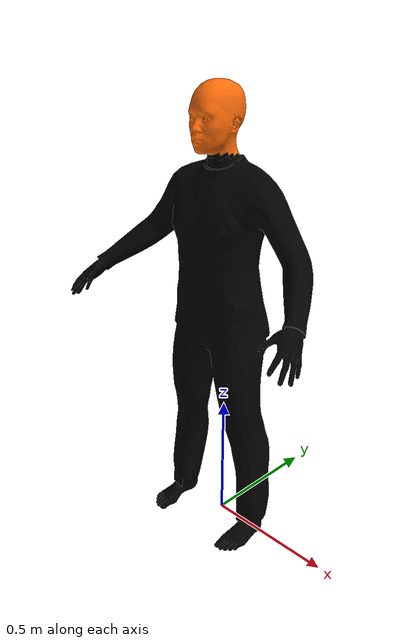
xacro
<?xml version="1.0"?>

<robot name="head" xmlns:xacro="http://www.ros.org/wiki/xacro">
  <xacro:property name="width" value="0.1" />
  <xacro:property name="height1" value="2" />
  <xacro:property name="mass" value="5" />
  <xacro:property name="rad" value="0.05" />
  <xacro:property name="rad_y" value="0.05" />
  <xacro:property name="rad_z" value="0.08" />
  <xacro:property name="rad_x" value="0.03" />

  <xacro:property name="rad_small" value="0.01" />
  <xacro:include filename="$(find heads)/urdf/materials.xacro" />
  <xacro:include filename="$(find heads)/urdf/head.gazebo" />

  <link name="world"/>

  <link name="torse_link">

    <collision name='collision'>
      <geometry>
        <mesh filename="package://heads/models/new_model2/torso.dae"/>
      </geometry>
    </collision>

    <visual name='visual'>
      <geometry>
        <mesh filename="package://heads/models/new_model2/torso.dae"/>
      </geometry>
      <material name="black"/>
    </visual>

    <inertial>
      <origin xyz="0 0 0" />
      <mass value="70.0" />
      <inertia  ixx="1.0" ixy="0.0"  ixz="0.0"  iyy="100.0"  iyz="0.0"  izz="1.0" />
    </inertial>
  </link>

  <joint name="torse_joint" type="fixed">
    <origin xyz="0 0 0.0" rpy="1.57 0 0"/>
    <parent link="world"/>
    <child link="torse_link"/>
  </joint>

  <link name="head_yaw_link">
    <inertial>
      <origin xyz="0.137802209307 0.090396 0.0227196811405" rpy="0 0 0"/>
      <mass value="0.10"/>
      <inertia ixx="0.0" ixy="0.0" ixz="0.0" iyy="0.0" iyz="0.0" izz="0.0"/>
    </inertial>

  </link>

  <joint name="head_yaw_joint" type="revolute">
    <origin xyz="0 1.5 0.0" rpy="0 0 0"/>
    <axis xyz="0 1 0"/>
    <limit effort="1000.0" lower="-0.50" upper="0.5" velocity="0.5"/>
    <parent link="torse_link"/>
    <child link="head_yaw_link"/>
  </joint>

  <link name="head_pitch_link">
    <inertial>
      <origin xyz="0.137802209307 0.090396 0.0227196811405" rpy="0 0 0"/>
      <mass value="0.10"/>
      <inertia ixx="0.0" ixy="0.0" ixz="0.0" iyy="0.0" iyz="0.0" izz="0.0"/>
    </inertial>
  </link>

  <joint name="head_pitch_joint" type="revolute">
    <axis xyz="1 0 0"/>
    <limit effort="1000.0" lower="-0.50" upper="0.5" velocity="0.5"/>
    <parent link="head_yaw_link"/>
    <child link="head_pitch_link"/>
  </joint>

  <link name="head_roll_link">
    <collision>
     <origin xyz="0 -1.5 0" rpy="0 0 0" />
      <geometry>
        <mesh filename="package://heads/models/new_model2/head/head.dae"/>
      </geometry>
    </collision>

    <visual>
     <origin xyz="0 -1.5 0" rpy="0 0 0" />
      <geometry>
        <mesh filename="package://heads/models/new_model2/head/head.dae"/>
      </geometry>
      <material name="orange"/>
    </visual>

    <inertial>
      <origin xyz="0 0 0.1" />
      <mass value="0.010" />
      <inertia  ixx="1.0" ixy="0.0"  ixz="0.0"  iyy="100.0"  iyz="0.0"  izz="1.0" />
    </inertial>
  </link>

  <joint name="head_roll_joint" type="revolute">
    <axis xyz="0 0 1"/>
    <limit effort="1000.0" lower="-0.50" upper="0.5" velocity="0.5"/>
    <parent link="head_pitch_link"/>
    <child link="head_roll_link"/>
  </joint>

<link name="left_eye_link">
    <collision>
      <geometry>
	    <sphere radius="${rad_small}"/>
      </geometry>
    </collision>

    <visual>
      <geometry>
	    <sphere radius="${rad_small}"/>
      </geometry>
      <material name="black"/>
    </visual>

    <inertial>
      <origin xyz="0 0 0.1" />
      <mass value="0.10" />
      <inertia  ixx="1.0" ixy="0.0"  ixz="0.0"  iyy="100.0"  iyz="0.0"  izz="1.0" />
    </inertial>
  </link>

  <joint name="left_eye_joint" type="fixed">
    <origin xyz="${rad_x} ${rad_y} ${rad_z}" rpy="0 0 0"/>
    <parent link="head_roll_link"/>
    <child link="left_eye_link"/>
  </joint>

  <link name="left_eye_yaw_link">
    <inertial>
      <origin xyz="0.137802209307 0.090396 0.0227196811405" rpy="0 0 0"/>
      <mass value="0.10"/>
      <inertia ixx="0.0" ixy="0.0" ixz="0.0" iyy="0.0" iyz="0.0" izz="0.0"/>
    </inertial>
  </link>

  <joint name="left_eye_yaw_joint" type="revolute">
    <axis xyz="0 1 0"/>
    <limit effort="1000.0" lower="-0.50" upper="0.5" velocity="0.5"/>
    <parent link="left_eye_link"/>
    <child link="left_eye_yaw_link"/>
  </joint>

  <link name="left_eye_pitch_link">
    <inertial>
      <origin xyz="0.137802209307 0.090396 0.0227196811405" rpy="0 0 0"/>
      <mass value="0.10"/>
      <inertia ixx="0.0" ixy="0.0" ixz="0.0" iyy="0.0" iyz="0.0" izz="0.0"/>
    </inertial>
  </link>

  <joint name="left_eye_pitch_joint" type="revolute">
    <axis xyz="1 0 0"/>
    <limit effort="1000.0" lower="-0.50" upper="0.5" velocity="0.5"/>
    <parent link="left_eye_yaw_link"/>
    <child link="left_eye_pitch_link"/>
  </joint>

  <link name="right_eye_link">
    <collision>
      <geometry>
	    <sphere radius="${rad_small}"/>
      </geometry>
    </collision>

    <visual>
      <geometry>
	    <sphere radius="${rad_small}"/>
      </geometry>
      <material name="black"/>
    </visual>

    <inertial>
      <origin xyz="0 0 0.1" />
      <mass value="0.10" />
      <inertia  ixx="1.0" ixy="0.0"  ixz="0.0"  iyy="100.0"  iyz="0.0"  izz="1.0" />
    </inertial>
  </link>

  <joint name="right_eye_joint" type="fixed">
    <origin xyz="-${rad_x} ${rad_y} ${rad_z}" rpy="0 0 0"/>
    <parent link="head_roll_link"/>
    <child link="right_eye_link"/>
  </joint>

  <link name="right_eye_yaw_link">
    <inertial>
      <origin xyz="0.137802209307 0.090396 0.0227196811405" rpy="0 0 0"/>
      <mass value="0.10"/>
      <inertia ixx="0.0" ixy="0.0" ixz="0.0" iyy="0.0" iyz="0.0" izz="0.0"/>
    </inertial>
  </link>

  <joint name="right_eye_yaw_joint" type="revolute">
    <axis xyz="0 1 0"/>
    <limit effort="1000.0" lower="-0.50" upper="0.5" velocity="0.5"/>
    <parent link="right_eye_link"/>
    <child link="right_eye_yaw_link"/>
  </joint>

  <link name="right_eye_pitch_link">
    <inertial>
      <origin xyz="0.137802209307 0.090396 0.0227196811405" rpy="0 0 0"/>
      <mass value="0.10"/>
      <inertia ixx="0.0" ixy="0.0" ixz="0.0" iyy="0.0" iyz="0.0" izz="0.0"/>
    </inertial>
  </link>

  <joint name="right_eye_pitch_joint" type="revolute">
    <axis xyz="1 0 0"/>
    <limit effort="1000.0" lower="-0.50" upper="0.5" velocity="0.5"/>
    <parent link="right_eye_yaw_link"/>
    <child link="right_eye_pitch_link"/>
  </joint>

  <link name="left_camera_link">
    <collision>
      <geometry>
	    <sphere radius="${rad_small}"/>
      </geometry>
    </collision>

    <visual>
      <geometry>
	    <sphere radius="${rad_small}"/>
      </geometry>
      <material name="black"/>
    </visual>
    <inertial>
      <origin xyz="0 0 0.1" />
      <mass value="0.10" />
      <inertia  ixx="1.0" ixy="0.0"  ixz="0.0"  iyy="100.0"  iyz="0.0"  izz="1.0" />
    </inertial>
  </link>

  <link name="right_camera_link">
    <collision>
      <geometry>
	    <sphere radius="${rad_small}"/>
      </geometry>
    </collision>

    <visual>
      <geometry>
	    <sphere radius="${rad_small}"/>
      </geometry>
      <material name="black"/>
    </visual>
    <inertial>
      <origin xyz="0 0 0.1" />
      <mass value="0.10" />
      <inertia  ixx="1.0" ixy="0.0"  ixz="0.0"  iyy="100.0"  iyz="0.0"  izz="1.0" />
    </inertial>
  </link>

  <joint name="right_camera_joint" type="fixed">
    <origin xyz="0 0 0" rpy="1.57 -1.57 -3.14"/>
    <parent link="right_eye_pitch_link"/>
    <child link="right_camera_link"/>
  </joint>

  <joint name="left_camera_joint" type="fixed">
    <origin xyz="0 0 0" rpy="1.57 -1.57 -3.14"/>
    <parent link="left_eye_pitch_link"/>
    <child link="left_camera_link"/>
  </joint>

  <transmission name="head_yaw_joint_tran">
    <type>transmission_interface/SimpleTransmission</type>
    <joint name="head_yaw_joint">
      <hardwareInterface>hardware_interface/PositionJointInterface</hardwareInterface>
    </joint>
    <actuator name="head_yaw_joint_motor">
      <hardwareInterface>hardware_interface/PositionJointInterface</hardwareInterface>
      <mechanicalReduction>1</mechanicalReduction>
    </actuator>
  </transmission>

  <transmission name="head_pitch_joint_tran">
    <type>transmission_interface/SimpleTransmission</type>
    <joint name="head_pitch_joint">
      <hardwareInterface>hardware_interface/PositionJointInterface</hardwareInterface>
    </joint>
    <actuator name="head_pitch_joint_motor">
      <hardwareInterface>hardware_interface/PositionJointInterface</hardwareInterface>
      <mechanicalReduction>1</mechanicalReduction>
    </actuator>
  </transmission>

  <transmission name="head_roll_joint_tran">
    <type>transmission_interface/SimpleTransmission</type>
    <joint name="head_roll_joint">
      <hardwareInterface>hardware_interface/PositionJointInterface</hardwareInterface>
    </joint>
    <actuator name="head_roll_joint_motor">
      <hardwareInterface>hardware_interface/PositionJointInterface</hardwareInterface>
      <mechanicalReduction>1</mechanicalReduction>
    </actuator>
  </transmission>

  <transmission name="left_eye_yaw_joint_tran">
    <type>transmission_interface/SimpleTransmission</type>
    <joint name="left_eye_yaw_joint">
      <hardwareInterface>hardware_interface/PositionJointInterface</hardwareInterface>
    </joint>
    <actuator name="left_eye_yaw_joint_motor">
      <hardwareInterface>hardware_interface/PositionJointInterface</hardwareInterface>
      <mechanicalReduction>1</mechanicalReduction>
    </actuator>
  </transmission>

  <transmission name="left_eye_pitch_joint_tran">
    <type>transmission_interface/SimpleTransmission</type>
    <joint name="left_eye_pitch_joint">
      <hardwareInterface>hardware_interface/PositionJointInterface</hardwareInterface>
    </joint>
    <actuator name="left_eye_pitch_joint_motor">
      <hardwareInterface>hardware_interface/PositionJointInterface</hardwareInterface>
      <mechanicalReduction>1</mechanicalReduction>
    </actuator>
  </transmission>

  <transmission name="right_eye_yaw_joint_tran">
    <type>transmission_interface/SimpleTransmission</type>
    <joint name="right_eye_yaw_joint">
      <hardwareInterface>hardware_interface/PositionJointInterface</hardwareInterface>
    </joint>
    <actuator name="right_eye_yaw_joint_motor">
      <hardwareInterface>hardware_interface/PositionJointInterface</hardwareInterface>
      <mechanicalReduction>1</mechanicalReduction>
    </actuator>
  </transmission>

  <transmission name="right_eye_pitch_joint_tran">
    <type>transmission_interface/SimpleTransmission</type>
    <joint name="right_eye_pitch_joint">
      <hardwareInterface>hardware_interface/PositionJointInterface</hardwareInterface>
    </joint>
    <actuator name="right_eye_pitch_joint">
      <hardwareInterface>hardware_interface/PositionJointInterface</hardwareInterface>
      <mechanicalReduction>1</mechanicalReduction>
    </actuator>
  </transmission>

</robot>

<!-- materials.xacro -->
<robot>

  <material name="black">
    <color rgba="0.0 0.0 0.0 1.0"/>
  </material>

  <material name="blue">
    <color rgba="0.0 0.0 0.8 1.0"/>
  </material>

  <material name="green">
    <color rgba="0.0 0.8 0.0 1.0"/>
  </material>

  <material name="grey">
    <color rgba="0.2 0.2 0.2 1.0"/>
  </material>

  <material name="orange">
    <color rgba="${255/255} ${108/255} ${10/255} 1.0"/>
  </material>

  <material name="brown">
    <color rgba="${222/255} ${207/255} ${195/255} 1.0"/>
  </material>

  <material name="red">
    <color rgba="0.8 0.0 0.0 1.0"/>
  </material>

  <material name="white">
    <color rgba="1.0 1.0 1.0 1.0"/>
  </material>

 <gazebo reference="camera_link">
    <sensor type="camera" name="camera1">
      <update_rate>30.0</update_rate>
      <camera name="head">
        <horizontal_fov>1.3962634</horizontal_fov>
        <image>
          <width>800</width>
          <height>800</height>
          <format>R8G8B8</format>
        </image>
        <clip>
          <near>0.02</near>
          <far>300</far>
        </clip>
        <noise>
          <type>gaussian</type>
          <!-- Noise is sampled independently per pixel on each frame.
               That pixel's noise value is added to each of its color
               channels, which at that point lie in the range [0,1]. -->
          <mean>0.0</mean>
          <stddev>0.007</stddev>
        </noise>
      </camera>
      <plugin name="camera_controller" filename="libgazebo_ros_camera.so">
        <alwaysOn>true</alwaysOn>
        <updateRate>0.0</updateRate>
        <cameraName>rrbot/camera1</cameraName>
        <imageTopicName>image_raw</imageTopicName>
        <cameraInfoTopicName>camera_info</cameraInfoTopicName>
        <frameName>camera_link</frameName>
        <hackBaseline>0.07</hackBaseline>
        <distortionK1>0.0</distortionK1>
        <distortionK2>0.0</distortionK2>
        <distortionK3>0.0</distortionK3>
        <distortionT1>0.0</distortionT1>
        <distortionT2>0.0</distortionT2>
      </plugin>
    </sensor>
  </gazebo>

</robot>
